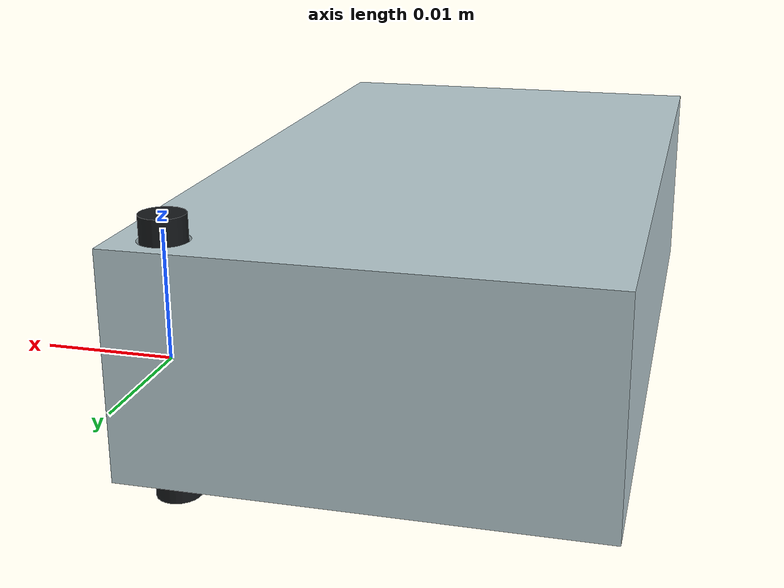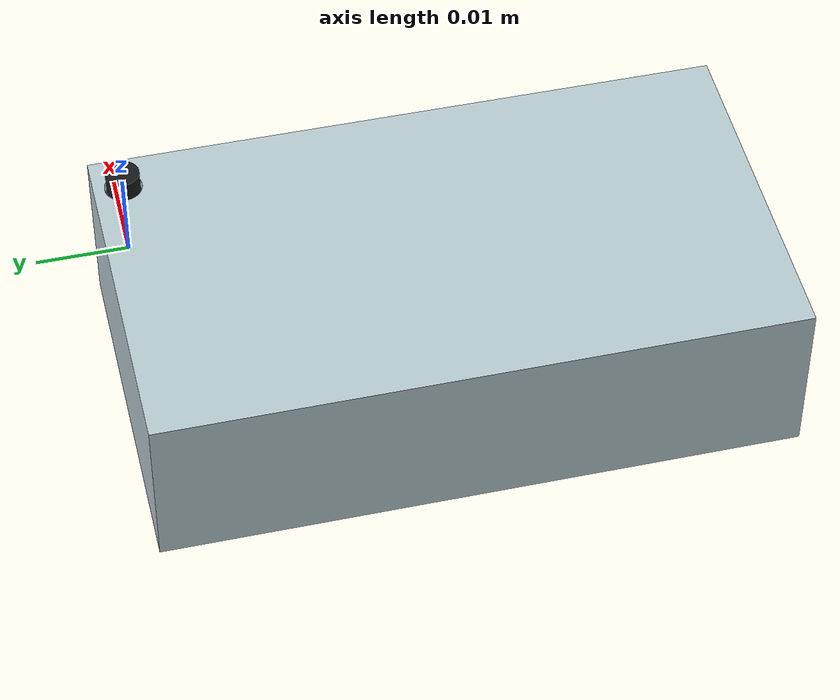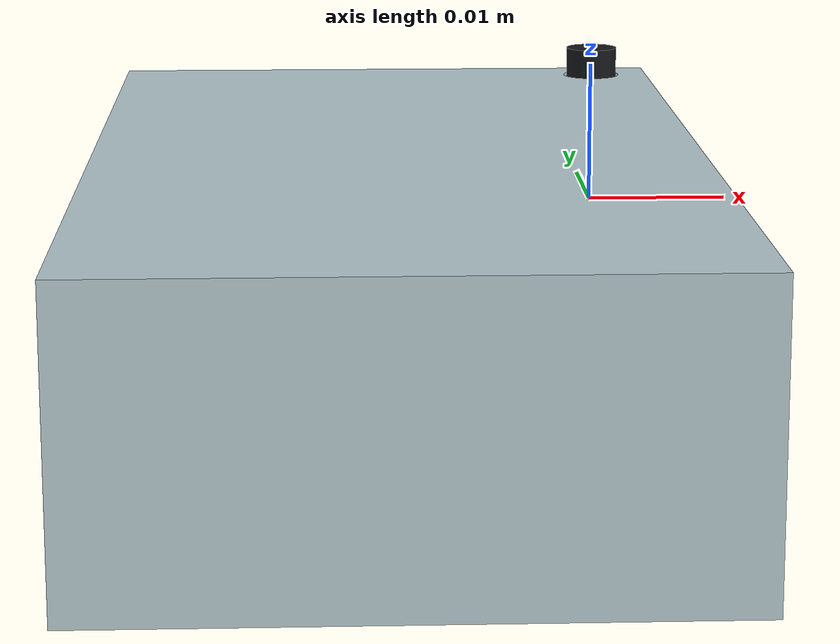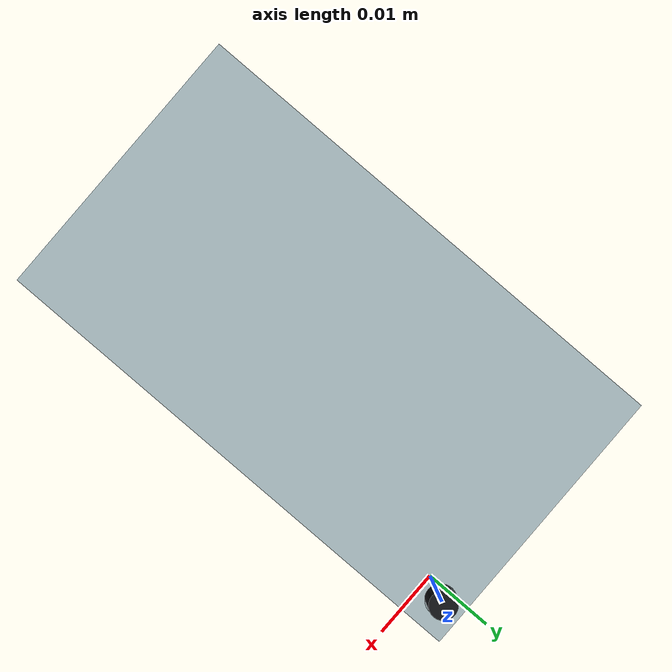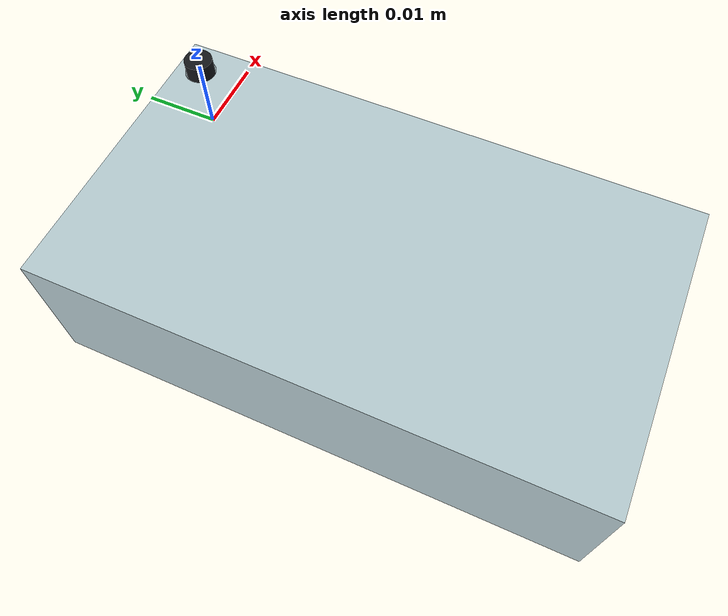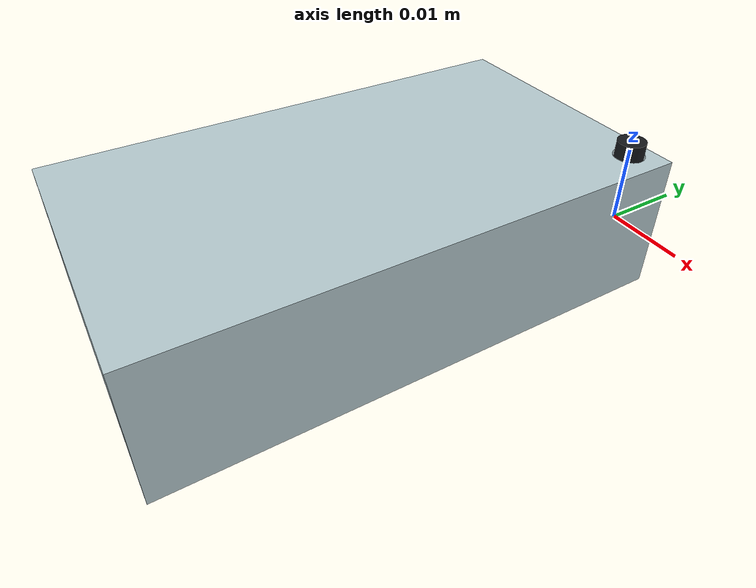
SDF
<?xml version="1.0"?>
<sdf version="1.7">
  <model name="riose_ear_tag">
    <static>false</static>
    <self_collide>false</self_collide>
    <link name="tag_link">
      <inertial>
        <pose>-0.0171476 -0.022791 -0.0015002 0 0 0</pose>
        <mass>0.0271588</mass>
        <!-- Uniform-envelope box approximation; diagonal terms only. -->
        <inertia>
          <ixx>1.12398e-5</ixx>
          <iyy>4.04271e-6</iyy>
          <izz>1.37333e-5</izz>
          <ixy>0</ixy>
          <ixz>0</ixz>
          <iyz>0</iyz>
        </inertia>
      </inertial>

      <!--
        Four envelope boxes leave a 4 x 4 mm square relief around the nominal
        mounting hole. Shapes and mass properties remain provisional proxies.
      -->
      <visual name="mvp2_cad_enclosure">
        <pose>-0.015 -0.0308 -0.00925 0 0 0</pose>
        <geometry><mesh><uri>meshes/ear_tag_assumed.stl</uri><scale>0.001 0.001 0.001</scale></mesh></geometry>
        <material>
          <ambient>0.48 0.56 0.59 1</ambient>
          <diffuse>0.72 0.80 0.82 1</diffuse>
          <specular>0.12 0.12 0.12 1</specular>
          <!-- STL has no UV coordinates, so use an explicit PBR base color. -->
          <pbr><metal><roughness>0.82</roughness><metalness>0.02</metalness></metal></pbr>
        </material>
      </visual>
      <!-- ASSUMED visual-only polymer locking pin in the nominal mounting bore.
           It is not a validated part or a change to the ear-tag attachment. -->
      <visual name="provisional_black_locking_pin">
        <pose>0 0 0 0 0 0</pose>
        <geometry><cylinder><radius>0.0018</radius><length>0.0225</length></cylinder></geometry>
        <material>
          <ambient>0.055 0.060 0.065 1</ambient>
          <diffuse>0.085 0.095 0.105 1</diffuse>
          <specular>0.16 0.17 0.18 1</specular>
          <pbr>
            <metal>
              <albedo_map>materials/textures/black_polymer_albedo.png</albedo_map>
              <metalness>0</metalness>
              <roughness>0.62</roughness>
            </metal>
          </pbr>
        </material>
      </visual>

      <collision name="body_left_collision">
        <pose>-0.018 -0.0308 0 0 0 0</pose>
        <geometry><box><size>0.032 0.068 0.0185</size></box></geometry>
      </collision>
      <collision name="body_right_collision">
        <pose>0.003 -0.0308 0 0 0 0</pose>
        <geometry><box><size>0.002 0.068 0.0185</size></box></geometry>
      </collision>
      <collision name="body_above_hole_collision">
        <pose>0 0.0026 0 0 0 0</pose>
        <geometry><box><size>0.004 0.0012 0.0185</size></box></geometry>
      </collision>
      <collision name="body_below_hole_collision">
        <pose>0 -0.0334 0 0 0 0</pose>
        <geometry><box><size>0.004 0.0628 0.0185</size></box></geometry>
      </collision>

      <sensor name="imu" type="imu">
        <!-- Package placement is an ASSUMED candidate from geometry.json. -->
        <pose>-0.0188 -0.0613 -0.0061 0 0 0</pose>
        <always_on>true</always_on>
        <update_rate>50</update_rate>
        <topic>/riose/mvp3/imu/data</topic>
        <imu/>
      </sensor>
    </link>

    <!-- The nominal attachment pivot is the tag_link origin. -->
    <frame name="attachment_pivot" attached_to="tag_link">
      <pose>0 0 0 0 0 0</pose>
    </frame>
  </model>
</sdf>
